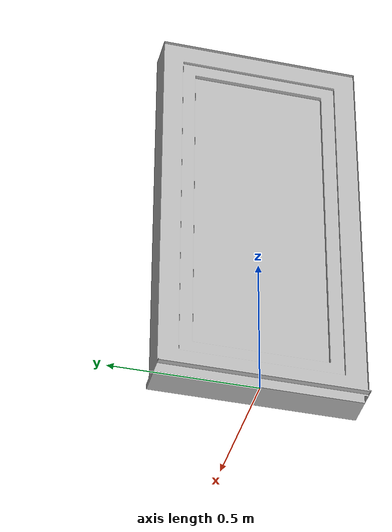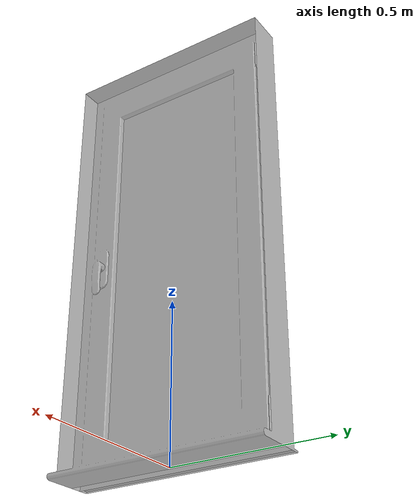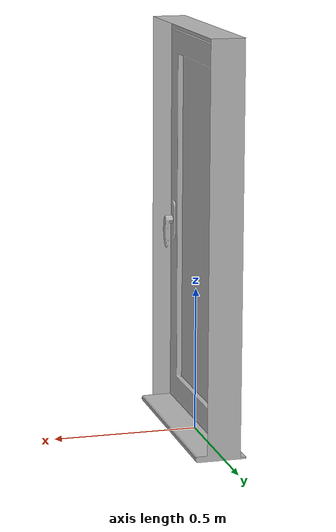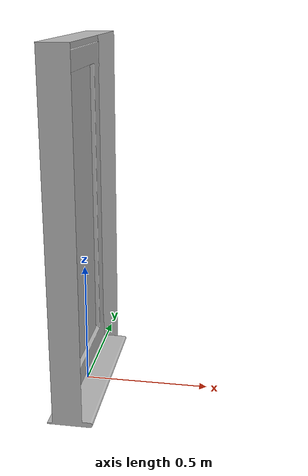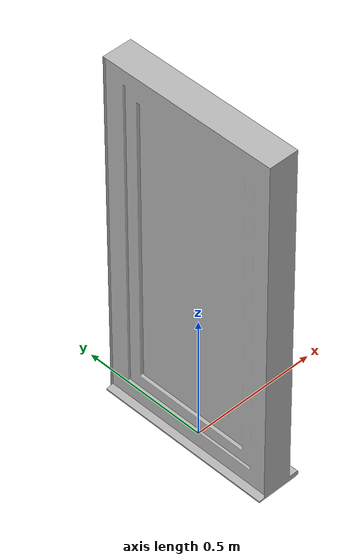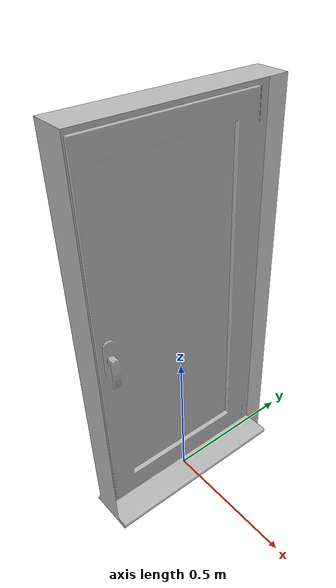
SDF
<?xml version='1.0'?>
<sdf version='1.4'>
  <model name='213'>
    <pose>0 0 0 0 0 0</pose>
    <static>true</static>
    <link name='link'>
      <collision name='collision'>
        <pose>0 0 0 0 0 0</pose>
        <geometry>
          <box>
            <size>0.175 0.7 2</size>
          </box>
        </geometry>
      </collision>
      <visual name='visual'>
        <pose>0 0 0 0 0 0</pose>
        <geometry>
          <mesh><uri>model://213/213.dae</uri></mesh>
        </geometry>
      </visual>
    </link>
  </model>
</sdf>
